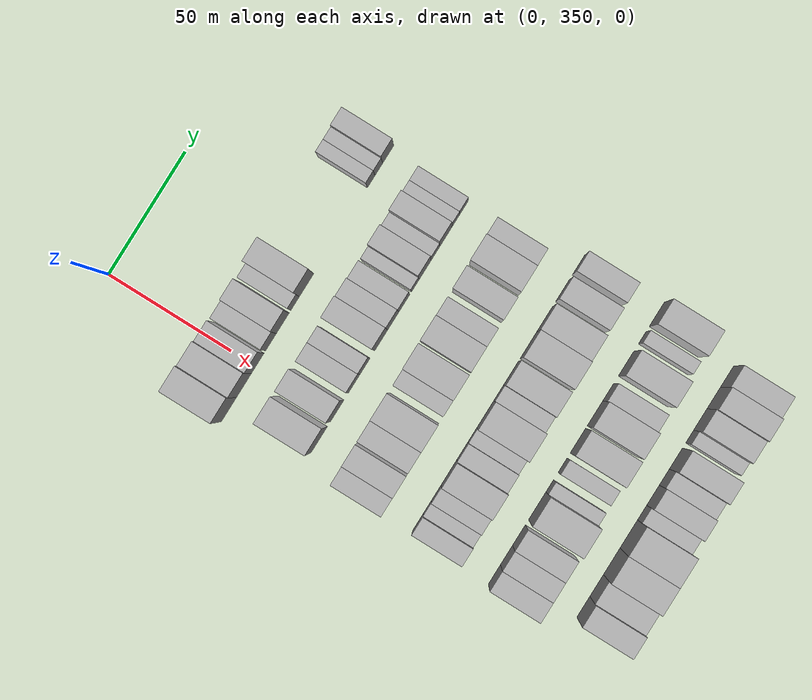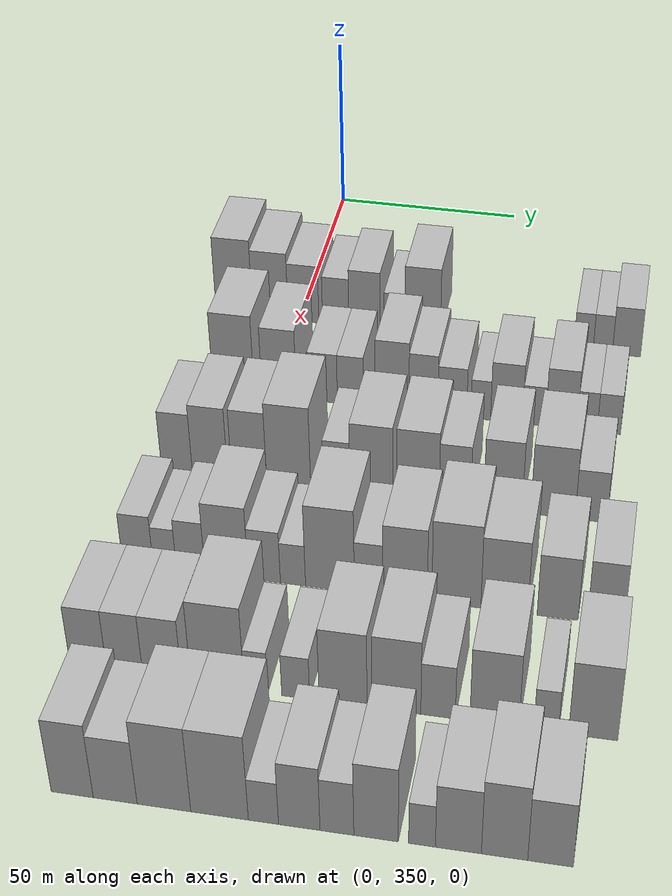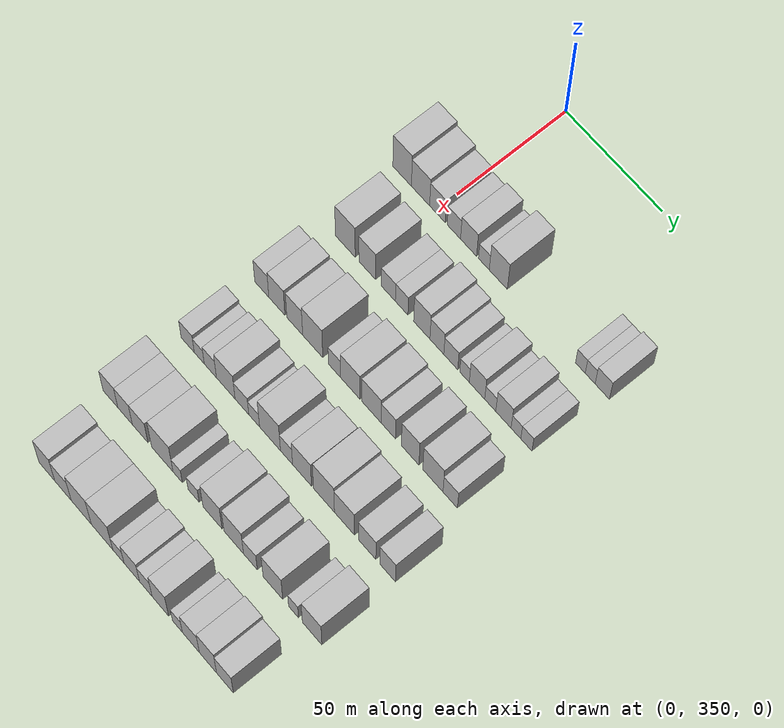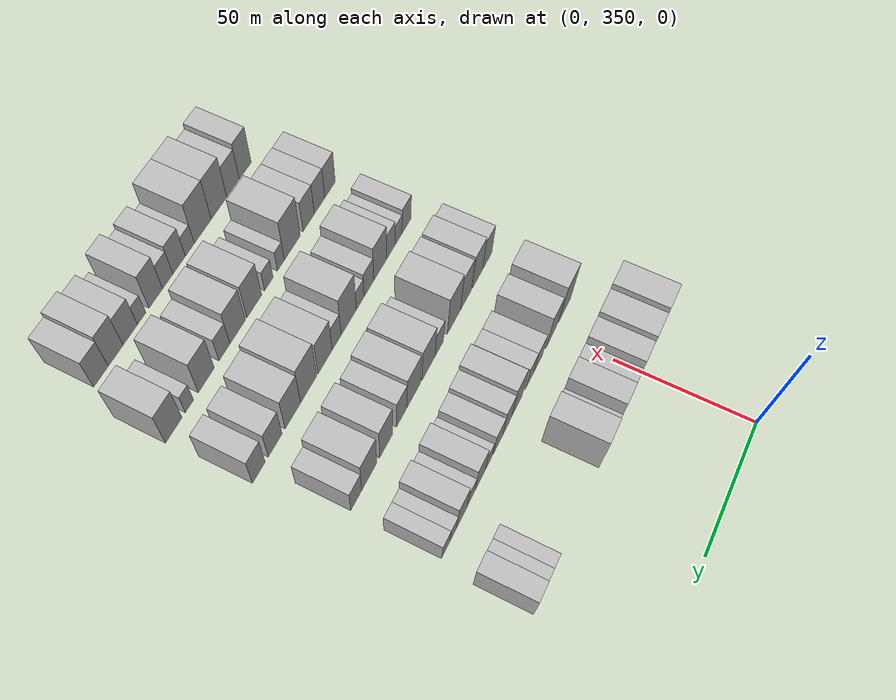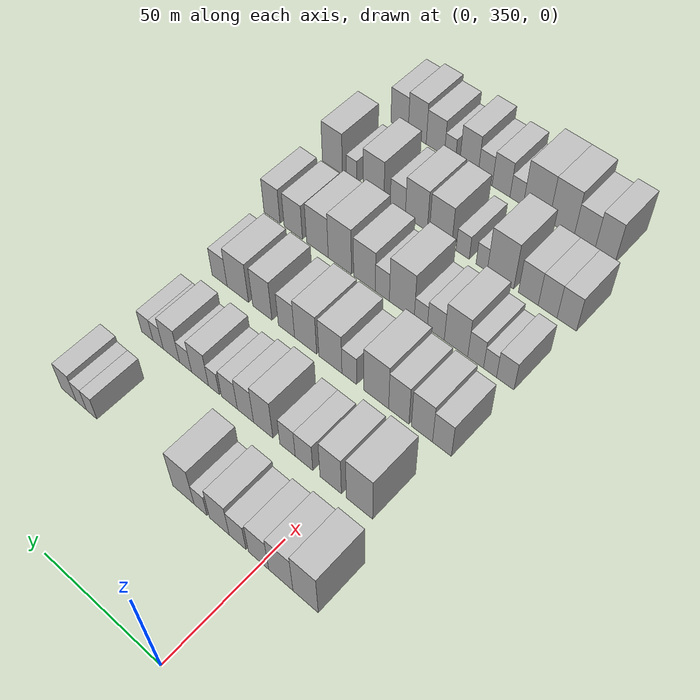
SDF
<sdf version="1.6">
 <world name="default">
  <model name="building_88">
   <static>1</static>
   <pose>50.0000 332.4073 0 0.000000 0.000000 0.000000</pose>
   <link name="link">
    <pose>0 0 12.00 0 0 0</pose>
    <collision name="collision"><geometry><box><size>20.0000 9.9280 24.0000</size></box></geometry></collision>
    <visual name="visual">
     <cast_shadows>0</cast_shadows>
     <geometry><box><size>20.0000 9.9280 24.0000</size></box></geometry>
     <material>
      <script>
       <uri>model://HANNAS_wall/materials/scripts</uri>
       <uri>model://HANNAS_wall/materials/textures</uri>
       <name>vrc/HANNAS_wall</name>
      </script>
     </material>
    </visual>
   </link>
  </model>
  <model name="building_89">
   <static>1</static>
   <pose>50.0000 342.2199 0 0.000000 0.000000 0.000000</pose>
   <link name="link">
    <pose>0 0 10.50 0 0 0</pose>
    <collision name="collision"><geometry><box><size>20.0000 9.6973 21.0000</size></box></geometry></collision>
    <visual name="visual">
     <cast_shadows>0</cast_shadows>
     <geometry><box><size>20.0000 9.6973 21.0000</size></box></geometry>
     <material>
      <script>
       <uri>model://HANNAS_wall/materials/scripts</uri>
       <uri>model://HANNAS_wall/materials/textures</uri>
       <name>vrc/HANNAS_wall</name>
      </script>
     </material>
    </visual>
   </link>
  </model>
  <model name="building_90">
   <static>1</static>
   <pose>50.0000 351.2147 0 0.000000 0.000000 0.000000</pose>
   <link name="link">
    <pose>0 0 9.00 0 0 0</pose>
    <collision name="collision"><geometry><box><size>20.0000 8.2923 18.0000</size></box></geometry></collision>
    <visual name="visual">
     <cast_shadows>0</cast_shadows>
     <geometry><box><size>20.0000 8.2923 18.0000</size></box></geometry>
     <material>
      <script>
       <uri>model://HANNAS_wall/materials/scripts</uri>
       <uri>model://HANNAS_wall/materials/textures</uri>
       <name>vrc/HANNAS_wall</name>
      </script>
     </material>
    </visual>
   </link>
  </model>
  <model name="building_91">
   <static>1</static>
   <pose>50.0000 359.8838 0 0.000000 0.000000 0.000000</pose>
   <link name="link">
    <pose>0 0 7.50 0 0 0</pose>
    <collision name="collision"><geometry><box><size>20.0000 7.0459 15.0000</size></box></geometry></collision>
    <visual name="visual">
     <cast_shadows>0</cast_shadows>
     <geometry><box><size>20.0000 7.0459 15.0000</size></box></geometry>
     <material>
      <script>
       <uri>model://HANNAS_wall/materials/scripts</uri>
       <uri>model://HANNAS_wall/materials/textures</uri>
       <name>vrc/HANNAS_wall</name>
      </script>
     </material>
    </visual>
   </link>
  </model>
  <model name="building_92">
   <static>1</static>
   <pose>50.0000 367.6012 0 0.000000 0.000000 0.000000</pose>
   <link name="link">
    <pose>0 0 9.00 0 0 0</pose>
    <collision name="collision"><geometry><box><size>20.0000 8.3888 18.0000</size></box></geometry></collision>
    <visual name="visual">
     <cast_shadows>0</cast_shadows>
     <geometry><box><size>20.0000 8.3888 18.0000</size></box></geometry>
     <material>
      <script>
       <uri>model://HANNAS_wall/materials/scripts</uri>
       <uri>model://HANNAS_wall/materials/textures</uri>
       <name>vrc/HANNAS_wall</name>
      </script>
     </material>
    </visual>
   </link>
  </model>
  <model name="building_93">
   <static>1</static>
   <pose>50.0000 375.6071 0 0.000000 0.000000 0.000000</pose>
   <link name="link">
    <pose>0 0 6.00 0 0 0</pose>
    <collision name="collision"><geometry><box><size>20.0000 5.6230 12.0000</size></box></geometry></collision>
    <visual name="visual">
     <cast_shadows>0</cast_shadows>
     <geometry><box><size>20.0000 5.6230 12.0000</size></box></geometry>
     <material>
      <script>
       <uri>model://HANNAS_wall/materials/scripts</uri>
       <uri>model://HANNAS_wall/materials/textures</uri>
       <name>vrc/HANNAS_wall</name>
      </script>
     </material>
    </visual>
   </link>
  </model>
  <model name="building_94">
   <static>1</static>
   <pose>50.0000 383.1094 0 0.000000 0.000000 0.000000</pose>
   <link name="link">
    <pose>0 0 10.50 0 0 0</pose>
    <collision name="collision"><geometry><box><size>20.0000 9.3817 21.0000</size></box></geometry></collision>
    <visual name="visual">
     <cast_shadows>0</cast_shadows>
     <geometry><box><size>20.0000 9.3817 21.0000</size></box></geometry>
     <material>
      <script>
       <uri>model://HANNAS_wall/materials/scripts</uri>
       <uri>model://HANNAS_wall/materials/textures</uri>
       <name>vrc/HANNAS_wall</name>
      </script>
     </material>
    </visual>
   </link>
  </model>
  <model name="building_95">
   <static>1</static>
   <pose>50.0000 425.2268 0 0.000000 0.000000 0.000000</pose>
   <link name="link">
    <pose>0 0 6.00 0 0 0</pose>
    <collision name="collision"><geometry><box><size>20.0000 4.9510 12.0000</size></box></geometry></collision>
    <visual name="visual">
     <cast_shadows>0</cast_shadows>
     <geometry><box><size>20.0000 4.9510 12.0000</size></box></geometry>
     <material>
      <script>
       <uri>model://HANNAS_wall/materials/scripts</uri>
       <uri>model://HANNAS_wall/materials/textures</uri>
       <name>vrc/HANNAS_wall</name>
      </script>
     </material>
    </visual>
   </link>
  </model>
  <model name="building_96">
   <static>1</static>
   <pose>50.0000 430.1942 0 0.000000 0.000000 0.000000</pose>
   <link name="link">
    <pose>0 0 6.00 0 0 0</pose>
    <collision name="collision"><geometry><box><size>20.0000 4.9839 12.0000</size></box></geometry></collision>
    <visual name="visual">
     <cast_shadows>0</cast_shadows>
     <geometry><box><size>20.0000 4.9839 12.0000</size></box></geometry>
     <material>
      <script>
       <uri>model://HANNAS_wall/materials/scripts</uri>
       <uri>model://HANNAS_wall/materials/textures</uri>
       <name>vrc/HANNAS_wall</name>
      </script>
     </material>
    </visual>
   </link>
  </model>
  <model name="building_97">
   <static>1</static>
   <pose>50.0000 436.2910 0 0.000000 0.000000 0.000000</pose>
   <link name="link">
    <pose>0 0 7.50 0 0 0</pose>
    <collision name="collision"><geometry><box><size>20.0000 7.2096 15.0000</size></box></geometry></collision>
    <visual name="visual">
     <cast_shadows>0</cast_shadows>
     <geometry><box><size>20.0000 7.2096 15.0000</size></box></geometry>
     <material>
      <script>
       <uri>model://HANNAS_wall/materials/scripts</uri>
       <uri>model://HANNAS_wall/materials/textures</uri>
       <name>vrc/HANNAS_wall</name>
      </script>
     </material>
    </visual>
   </link>
  </model>
  <model name="building_202">
   <static>1</static>
   <pose>82.0000 340.1632 0 0.000000 0.000000 0.000000</pose>
   <link name="link">
    <pose>0 0 12.00 0 0 0</pose>
    <collision name="collision"><geometry><box><size>20.0000 10.5875 24.0000</size></box></geometry></collision>
    <visual name="visual">
     <cast_shadows>0</cast_shadows>
     <geometry><box><size>20.0000 10.5875 24.0000</size></box></geometry>
     <material>
      <script>
       <uri>model://HANNAS_wall/materials/scripts</uri>
       <uri>model://HANNAS_wall/materials/textures</uri>
       <name>vrc/HANNAS_wall</name>
      </script>
     </material>
    </visual>
   </link>
  </model>
  <model name="building_203">
   <static>1</static>
   <pose>82.0000 351.8700 0 0.000000 0.000000 0.000000</pose>
   <link name="link">
    <pose>0 0 10.50 0 0 0</pose>
    <collision name="collision"><geometry><box><size>20.0000 8.8261 21.0000</size></box></geometry></collision>
    <visual name="visual">
     <cast_shadows>0</cast_shadows>
     <geometry><box><size>20.0000 8.8261 21.0000</size></box></geometry>
     <material>
      <script>
       <uri>model://HANNAS_wall/materials/scripts</uri>
       <uri>model://HANNAS_wall/materials/textures</uri>
       <name>vrc/HANNAS_wall</name>
      </script>
     </material>
    </visual>
   </link>
  </model>
  <model name="building_204">
   <static>1</static>
   <pose>82.0000 363.0086 0 0.000000 0.000000 0.000000</pose>
   <link name="link">
    <pose>0 0 7.50 0 0 0</pose>
    <collision name="collision"><geometry><box><size>20.0000 7.4512 15.0000</size></box></geometry></collision>
    <visual name="visual">
     <cast_shadows>0</cast_shadows>
     <geometry><box><size>20.0000 7.4512 15.0000</size></box></geometry>
     <material>
      <script>
       <uri>model://HANNAS_wall/materials/scripts</uri>
       <uri>model://HANNAS_wall/materials/textures</uri>
       <name>vrc/HANNAS_wall</name>
      </script>
     </material>
    </visual>
   </link>
  </model>
  <model name="building_205">
   <static>1</static>
   <pose>82.0000 370.0252 0 0.000000 0.000000 0.000000</pose>
   <link name="link">
    <pose>0 0 7.50 0 0 0</pose>
    <collision name="collision"><geometry><box><size>20.0000 6.5820 15.0000</size></box></geometry></collision>
    <visual name="visual">
     <cast_shadows>0</cast_shadows>
     <geometry><box><size>20.0000 6.5820 15.0000</size></box></geometry>
     <material>
      <script>
       <uri>model://HANNAS_wall/materials/scripts</uri>
       <uri>model://HANNAS_wall/materials/textures</uri>
       <name>vrc/HANNAS_wall</name>
      </script>
     </material>
    </visual>
   </link>
  </model>
  <model name="building_206">
   <static>1</static>
   <pose>82.0000 380.5634 0 0.000000 0.000000 0.000000</pose>
   <link name="link">
    <pose>0 0 10.50 0 0 0</pose>
    <collision name="collision"><geometry><box><size>20.0000 8.4944 21.0000</size></box></geometry></collision>
    <visual name="visual">
     <cast_shadows>0</cast_shadows>
     <geometry><box><size>20.0000 8.4944 21.0000</size></box></geometry>
     <material>
      <script>
       <uri>model://HANNAS_wall/materials/scripts</uri>
       <uri>model://HANNAS_wall/materials/textures</uri>
       <name>vrc/HANNAS_wall</name>
      </script>
     </material>
    </visual>
   </link>
  </model>
  <model name="building_207">
   <static>1</static>
   <pose>82.0000 388.4216 0 0.000000 0.000000 0.000000</pose>
   <link name="link">
    <pose>0 0 9.00 0 0 0</pose>
    <collision name="collision"><geometry><box><size>20.0000 7.2219 18.0000</size></box></geometry></collision>
    <visual name="visual">
     <cast_shadows>0</cast_shadows>
     <geometry><box><size>20.0000 7.2219 18.0000</size></box></geometry>
     <material>
      <script>
       <uri>model://HANNAS_wall/materials/scripts</uri>
       <uri>model://HANNAS_wall/materials/textures</uri>
       <name>vrc/HANNAS_wall</name>
      </script>
     </material>
    </visual>
   </link>
  </model>
  <model name="building_208">
   <static>1</static>
   <pose>82.0000 395.6303 0 0.000000 0.000000 0.000000</pose>
   <link name="link">
    <pose>0 0 7.50 0 0 0</pose>
    <collision name="collision"><geometry><box><size>20.0000 7.1954 15.0000</size></box></geometry></collision>
    <visual name="visual">
     <cast_shadows>0</cast_shadows>
     <geometry><box><size>20.0000 7.1954 15.0000</size></box></geometry>
     <material>
      <script>
       <uri>model://HANNAS_wall/materials/scripts</uri>
       <uri>model://HANNAS_wall/materials/textures</uri>
       <name>vrc/HANNAS_wall</name>
      </script>
     </material>
    </visual>
   </link>
  </model>
  <model name="building_209">
   <static>1</static>
   <pose>82.0000 402.6941 0 0.000000 0.000000 0.000000</pose>
   <link name="link">
    <pose>0 0 6.00 0 0 0</pose>
    <collision name="collision"><geometry><box><size>20.0000 4.9323 12.0000</size></box></geometry></collision>
    <visual name="visual">
     <cast_shadows>0</cast_shadows>
     <geometry><box><size>20.0000 4.9323 12.0000</size></box></geometry>
     <material>
      <script>
       <uri>model://HANNAS_wall/materials/scripts</uri>
       <uri>model://HANNAS_wall/materials/textures</uri>
       <name>vrc/HANNAS_wall</name>
      </script>
     </material>
    </visual>
   </link>
  </model>
  <model name="building_210">
   <static>1</static>
   <pose>82.0000 409.1132 0 0.000000 0.000000 0.000000</pose>
   <link name="link">
    <pose>0 0 9.00 0 0 0</pose>
    <collision name="collision"><geometry><box><size>20.0000 7.9059 18.0000</size></box></geometry></collision>
    <visual name="visual">
     <cast_shadows>0</cast_shadows>
     <geometry><box><size>20.0000 7.9059 18.0000</size></box></geometry>
     <material>
      <script>
       <uri>model://HANNAS_wall/materials/scripts</uri>
       <uri>model://HANNAS_wall/materials/textures</uri>
       <name>vrc/HANNAS_wall</name>
      </script>
     </material>
    </visual>
   </link>
  </model>
  <model name="building_211">
   <static>1</static>
   <pose>82.0000 415.9010 0 0.000000 0.000000 0.000000</pose>
   <link name="link">
    <pose>0 0 6.00 0 0 0</pose>
    <collision name="collision"><geometry><box><size>20.0000 5.6697 12.0000</size></box></geometry></collision>
    <visual name="visual">
     <cast_shadows>0</cast_shadows>
     <geometry><box><size>20.0000 5.6697 12.0000</size></box></geometry>
     <material>
      <script>
       <uri>model://HANNAS_wall/materials/scripts</uri>
       <uri>model://HANNAS_wall/materials/textures</uri>
       <name>vrc/HANNAS_wall</name>
      </script>
     </material>
    </visual>
   </link>
  </model>
  <model name="building_212">
   <static>1</static>
   <pose>82.0000 422.6254 0 0.000000 0.000000 0.000000</pose>
   <link name="link">
    <pose>0 0 9.00 0 0 0</pose>
    <collision name="collision"><geometry><box><size>20.0000 7.7792 18.0000</size></box></geometry></collision>
    <visual name="visual">
     <cast_shadows>0</cast_shadows>
     <geometry><box><size>20.0000 7.7792 18.0000</size></box></geometry>
     <material>
      <script>
       <uri>model://HANNAS_wall/materials/scripts</uri>
       <uri>model://HANNAS_wall/materials/textures</uri>
       <name>vrc/HANNAS_wall</name>
      </script>
     </material>
    </visual>
   </link>
  </model>
  <model name="building_213">
   <static>1</static>
   <pose>82.0000 428.9728 0 0.000000 0.000000 0.000000</pose>
   <link name="link">
    <pose>0 0 6.00 0 0 0</pose>
    <collision name="collision"><geometry><box><size>20.0000 4.9157 12.0000</size></box></geometry></collision>
    <visual name="visual">
     <cast_shadows>0</cast_shadows>
     <geometry><box><size>20.0000 4.9157 12.0000</size></box></geometry>
     <material>
      <script>
       <uri>model://HANNAS_wall/materials/scripts</uri>
       <uri>model://HANNAS_wall/materials/textures</uri>
       <name>vrc/HANNAS_wall</name>
      </script>
     </material>
    </visual>
   </link>
  </model>
  <model name="building_214">
   <static>1</static>
   <pose>82.0000 434.2665 0 0.000000 0.000000 0.000000</pose>
   <link name="link">
    <pose>0 0 6.00 0 0 0</pose>
    <collision name="collision"><geometry><box><size>20.0000 5.6716 12.0000</size></box></geometry></collision>
    <visual name="visual">
     <cast_shadows>0</cast_shadows>
     <geometry><box><size>20.0000 5.6716 12.0000</size></box></geometry>
     <material>
      <script>
       <uri>model://HANNAS_wall/materials/scripts</uri>
       <uri>model://HANNAS_wall/materials/textures</uri>
       <name>vrc/HANNAS_wall</name>
      </script>
     </material>
    </visual>
   </link>
  </model>
  <model name="building_327">
   <static>1</static>
   <pose>114.0000 334.2565 0 0.000000 0.000000 0.000000</pose>
   <link name="link">
    <pose>0 0 9.00 0 0 0</pose>
    <collision name="collision"><geometry><box><size>20.0000 7.5615 18.0000</size></box></geometry></collision>
    <visual name="visual">
     <cast_shadows>0</cast_shadows>
     <geometry><box><size>20.0000 7.5615 18.0000</size></box></geometry>
     <material>
      <script>
       <uri>model://HANNAS_wall/materials/scripts</uri>
       <uri>model://HANNAS_wall/materials/textures</uri>
       <name>vrc/HANNAS_wall</name>
      </script>
     </material>
    </visual>
   </link>
  </model>
  <model name="building_328">
   <static>1</static>
   <pose>114.0000 342.3560 0 0.000000 0.000000 0.000000</pose>
   <link name="link">
    <pose>0 0 10.50 0 0 0</pose>
    <collision name="collision"><geometry><box><size>20.0000 8.6376 21.0000</size></box></geometry></collision>
    <visual name="visual">
     <cast_shadows>0</cast_shadows>
     <geometry><box><size>20.0000 8.6376 21.0000</size></box></geometry>
     <material>
      <script>
       <uri>model://HANNAS_wall/materials/scripts</uri>
       <uri>model://HANNAS_wall/materials/textures</uri>
       <name>vrc/HANNAS_wall</name>
      </script>
     </material>
    </visual>
   </link>
  </model>
  <model name="building_329">
   <static>1</static>
   <pose>114.0000 351.8995 0 0.000000 0.000000 0.000000</pose>
   <link name="link">
    <pose>0 0 10.50 0 0 0</pose>
    <collision name="collision"><geometry><box><size>20.0000 8.4495 21.0000</size></box></geometry></collision>
    <visual name="visual">
     <cast_shadows>0</cast_shadows>
     <geometry><box><size>20.0000 8.4495 21.0000</size></box></geometry>
     <material>
      <script>
       <uri>model://HANNAS_wall/materials/scripts</uri>
       <uri>model://HANNAS_wall/materials/textures</uri>
       <name>vrc/HANNAS_wall</name>
      </script>
     </material>
    </visual>
   </link>
  </model>
  <model name="building_330">
   <static>1</static>
   <pose>114.0000 361.4317 0 0.000000 0.000000 0.000000</pose>
   <link name="link">
    <pose>0 0 12.00 0 0 0</pose>
    <collision name="collision"><geometry><box><size>20.0000 10.6148 24.0000</size></box></geometry></collision>
    <visual name="visual">
     <cast_shadows>0</cast_shadows>
     <geometry><box><size>20.0000 10.6148 24.0000</size></box></geometry>
     <material>
      <script>
       <uri>model://HANNAS_wall/materials/scripts</uri>
       <uri>model://HANNAS_wall/materials/textures</uri>
       <name>vrc/HANNAS_wall</name>
      </script>
     </material>
    </visual>
   </link>
  </model>
  <model name="building_331">
   <static>1</static>
   <pose>114.0000 372.9339 0 0.000000 0.000000 0.000000</pose>
   <link name="link">
    <pose>0 0 7.50 0 0 0</pose>
    <collision name="collision"><geometry><box><size>20.0000 6.3896 15.0000</size></box></geometry></collision>
    <visual name="visual">
     <cast_shadows>0</cast_shadows>
     <geometry><box><size>20.0000 6.3896 15.0000</size></box></geometry>
     <material>
      <script>
       <uri>model://HANNAS_wall/materials/scripts</uri>
       <uri>model://HANNAS_wall/materials/textures</uri>
       <name>vrc/HANNAS_wall</name>
      </script>
     </material>
    </visual>
   </link>
  </model>
  <model name="building_332">
   <static>1</static>
   <pose>114.0000 381.2101 0 0.000000 0.000000 0.000000</pose>
   <link name="link">
    <pose>0 0 10.50 0 0 0</pose>
    <collision name="collision"><geometry><box><size>20.0000 10.1627 21.0000</size></box></geometry></collision>
    <visual name="visual">
     <cast_shadows>0</cast_shadows>
     <geometry><box><size>20.0000 10.1627 21.0000</size></box></geometry>
     <material>
      <script>
       <uri>model://HANNAS_wall/materials/scripts</uri>
       <uri>model://HANNAS_wall/materials/textures</uri>
       <name>vrc/HANNAS_wall</name>
      </script>
     </material>
    </visual>
   </link>
  </model>
  <model name="building_333">
   <static>1</static>
   <pose>114.0000 392.2858 0 0.000000 0.000000 0.000000</pose>
   <link name="link">
    <pose>0 0 10.50 0 0 0</pose>
    <collision name="collision"><geometry><box><size>20.0000 9.9888 21.0000</size></box></geometry></collision>
    <visual name="visual">
     <cast_shadows>0</cast_shadows>
     <geometry><box><size>20.0000 9.9888 21.0000</size></box></geometry>
     <material>
      <script>
       <uri>model://HANNAS_wall/materials/scripts</uri>
       <uri>model://HANNAS_wall/materials/textures</uri>
       <name>vrc/HANNAS_wall</name>
      </script>
     </material>
    </visual>
   </link>
  </model>
  <model name="building_334">
   <static>1</static>
   <pose>114.0000 400.9916 0 0.000000 0.000000 0.000000</pose>
   <link name="link">
    <pose>0 0 9.00 0 0 0</pose>
    <collision name="collision"><geometry><box><size>20.0000 7.4227 18.0000</size></box></geometry></collision>
    <visual name="visual">
     <cast_shadows>0</cast_shadows>
     <geometry><box><size>20.0000 7.4227 18.0000</size></box></geometry>
     <material>
      <script>
       <uri>model://HANNAS_wall/materials/scripts</uri>
       <uri>model://HANNAS_wall/materials/textures</uri>
       <name>vrc/HANNAS_wall</name>
      </script>
     </material>
    </visual>
   </link>
  </model>
  <model name="building_335">
   <static>1</static>
   <pose>114.0000 412.2151 0 0.000000 0.000000 0.000000</pose>
   <link name="link">
    <pose>0 0 10.50 0 0 0</pose>
    <collision name="collision"><geometry><box><size>20.0000 9.0244 21.0000</size></box></geometry></collision>
    <visual name="visual">
     <cast_shadows>0</cast_shadows>
     <geometry><box><size>20.0000 9.0244 21.0000</size></box></geometry>
     <material>
      <script>
       <uri>model://HANNAS_wall/materials/scripts</uri>
       <uri>model://HANNAS_wall/materials/textures</uri>
       <name>vrc/HANNAS_wall</name>
      </script>
     </material>
    </visual>
   </link>
  </model>
  <model name="building_336">
   <static>1</static>
   <pose>114.0000 423.8773 0 0.000000 0.000000 0.000000</pose>
   <link name="link">
    <pose>0 0 10.50 0 0 0</pose>
    <collision name="collision"><geometry><box><size>20.0000 10.2999 21.0000</size></box></geometry></collision>
    <visual name="visual">
     <cast_shadows>0</cast_shadows>
     <geometry><box><size>20.0000 10.2999 21.0000</size></box></geometry>
     <material>
      <script>
       <uri>model://HANNAS_wall/materials/scripts</uri>
       <uri>model://HANNAS_wall/materials/textures</uri>
       <name>vrc/HANNAS_wall</name>
      </script>
     </material>
    </visual>
   </link>
  </model>
  <model name="building_337">
   <static>1</static>
   <pose>114.0000 432.6877 0 0.000000 0.000000 0.000000</pose>
   <link name="link">
    <pose>0 0 7.50 0 0 0</pose>
    <collision name="collision"><geometry><box><size>20.0000 7.3209 15.0000</size></box></geometry></collision>
    <visual name="visual">
     <cast_shadows>0</cast_shadows>
     <geometry><box><size>20.0000 7.3209 15.0000</size></box></geometry>
     <material>
      <script>
       <uri>model://HANNAS_wall/materials/scripts</uri>
       <uri>model://HANNAS_wall/materials/textures</uri>
       <name>vrc/HANNAS_wall</name>
      </script>
     </material>
    </visual>
   </link>
  </model>
  <model name="building_443">
   <static>1</static>
   <pose>146.0000 334.0031 0 0.000000 0.000000 0.000000</pose>
   <link name="link">
    <pose>0 0 7.50 0 0 0</pose>
    <collision name="collision"><geometry><box><size>20.0000 7.1142 15.0000</size></box></geometry></collision>
    <visual name="visual">
     <cast_shadows>0</cast_shadows>
     <geometry><box><size>20.0000 7.1142 15.0000</size></box></geometry>
     <material>
      <script>
       <uri>model://HANNAS_wall/materials/scripts</uri>
       <uri>model://HANNAS_wall/materials/textures</uri>
       <name>vrc/HANNAS_wall</name>
      </script>
     </material>
    </visual>
   </link>
  </model>
  <model name="building_444">
   <static>1</static>
   <pose>146.0000 340.2319 0 0.000000 0.000000 0.000000</pose>
   <link name="link">
    <pose>0 0 6.00 0 0 0</pose>
    <collision name="collision"><geometry><box><size>20.0000 5.3434 12.0000</size></box></geometry></collision>
    <visual name="visual">
     <cast_shadows>0</cast_shadows>
     <geometry><box><size>20.0000 5.3434 12.0000</size></box></geometry>
     <material>
      <script>
       <uri>model://HANNAS_wall/materials/scripts</uri>
       <uri>model://HANNAS_wall/materials/textures</uri>
       <name>vrc/HANNAS_wall</name>
      </script>
     </material>
    </visual>
   </link>
  </model>
  <model name="building_445">
   <static>1</static>
   <pose>146.0000 346.1858 0 0.000000 0.000000 0.000000</pose>
   <link name="link">
    <pose>0 0 7.50 0 0 0</pose>
    <collision name="collision"><geometry><box><size>20.0000 6.5643 15.0000</size></box></geometry></collision>
    <visual name="visual">
     <cast_shadows>0</cast_shadows>
     <geometry><box><size>20.0000 6.5643 15.0000</size></box></geometry>
     <material>
      <script>
       <uri>model://HANNAS_wall/materials/scripts</uri>
       <uri>model://HANNAS_wall/materials/textures</uri>
       <name>vrc/HANNAS_wall</name>
      </script>
     </material>
    </visual>
   </link>
  </model>
  <model name="building_446">
   <static>1</static>
   <pose>146.0000 354.4262 0 0.000000 0.000000 0.000000</pose>
   <link name="link">
    <pose>0 0 10.50 0 0 0</pose>
    <collision name="collision"><geometry><box><size>20.0000 9.9166 21.0000</size></box></geometry></collision>
    <visual name="visual">
     <cast_shadows>0</cast_shadows>
     <geometry><box><size>20.0000 9.9166 21.0000</size></box></geometry>
     <material>
      <script>
       <uri>model://HANNAS_wall/materials/scripts</uri>
       <uri>model://HANNAS_wall/materials/textures</uri>
       <name>vrc/HANNAS_wall</name>
      </script>
     </material>
    </visual>
   </link>
  </model>
  <model name="building_447">
   <static>1</static>
   <pose>146.0000 363.0286 0 0.000000 0.000000 0.000000</pose>
   <link name="link">
    <pose>0 0 7.50 0 0 0</pose>
    <collision name="collision"><geometry><box><size>20.0000 7.2883 15.0000</size></box></geometry></collision>
    <visual name="visual">
     <cast_shadows>0</cast_shadows>
     <geometry><box><size>20.0000 7.2883 15.0000</size></box></geometry>
     <material>
      <script>
       <uri>model://HANNAS_wall/materials/scripts</uri>
       <uri>model://HANNAS_wall/materials/textures</uri>
       <name>vrc/HANNAS_wall</name>
      </script>
     </material>
    </visual>
   </link>
  </model>
  <model name="building_448">
   <static>1</static>
   <pose>146.0000 369.5188 0 0.000000 0.000000 0.000000</pose>
   <link name="link">
    <pose>0 0 6.00 0 0 0</pose>
    <collision name="collision"><geometry><box><size>20.0000 5.6920 12.0000</size></box></geometry></collision>
    <visual name="visual">
     <cast_shadows>0</cast_shadows>
     <geometry><box><size>20.0000 5.6920 12.0000</size></box></geometry>
     <material>
      <script>
       <uri>model://HANNAS_wall/materials/scripts</uri>
       <uri>model://HANNAS_wall/materials/textures</uri>
       <name>vrc/HANNAS_wall</name>
      </script>
     </material>
    </visual>
   </link>
  </model>
  <model name="building_449">
   <static>1</static>
   <pose>146.0000 377.8649 0 0.000000 0.000000 0.000000</pose>
   <link name="link">
    <pose>0 0 12.00 0 0 0</pose>
    <collision name="collision"><geometry><box><size>20.0000 11.0002 24.0000</size></box></geometry></collision>
    <visual name="visual">
     <cast_shadows>0</cast_shadows>
     <geometry><box><size>20.0000 11.0002 24.0000</size></box></geometry>
     <material>
      <script>
       <uri>model://HANNAS_wall/materials/scripts</uri>
       <uri>model://HANNAS_wall/materials/textures</uri>
       <name>vrc/HANNAS_wall</name>
      </script>
     </material>
    </visual>
   </link>
  </model>
  <model name="building_450">
   <static>1</static>
   <pose>146.0000 386.5357 0 0.000000 0.000000 0.000000</pose>
   <link name="link">
    <pose>0 0 7.50 0 0 0</pose>
    <collision name="collision"><geometry><box><size>20.0000 6.3415 15.0000</size></box></geometry></collision>
    <visual name="visual">
     <cast_shadows>0</cast_shadows>
     <geometry><box><size>20.0000 6.3415 15.0000</size></box></geometry>
     <material>
      <script>
       <uri>model://HANNAS_wall/materials/scripts</uri>
       <uri>model://HANNAS_wall/materials/textures</uri>
       <name>vrc/HANNAS_wall</name>
      </script>
     </material>
    </visual>
   </link>
  </model>
  <model name="building_451">
   <static>1</static>
   <pose>146.0000 394.6485 0 0.000000 0.000000 0.000000</pose>
   <link name="link">
    <pose>0 0 10.50 0 0 0</pose>
    <collision name="collision"><geometry><box><size>20.0000 9.8841 21.0000</size></box></geometry></collision>
    <visual name="visual">
     <cast_shadows>0</cast_shadows>
     <geometry><box><size>20.0000 9.8841 21.0000</size></box></geometry>
     <material>
      <script>
       <uri>model://HANNAS_wall/materials/scripts</uri>
       <uri>model://HANNAS_wall/materials/textures</uri>
       <name>vrc/HANNAS_wall</name>
      </script>
     </material>
    </visual>
   </link>
  </model>
  <model name="building_452">
   <static>1</static>
   <pose>146.0000 406.0019 0 0.000000 0.000000 0.000000</pose>
   <link name="link">
    <pose>0 0 12.00 0 0 0</pose>
    <collision name="collision"><geometry><box><size>20.0000 10.8226 24.0000</size></box></geometry></collision>
    <visual name="visual">
     <cast_shadows>0</cast_shadows>
     <geometry><box><size>20.0000 10.8226 24.0000</size></box></geometry>
     <material>
      <script>
       <uri>model://HANNAS_wall/materials/scripts</uri>
       <uri>model://HANNAS_wall/materials/textures</uri>
       <name>vrc/HANNAS_wall</name>
      </script>
     </material>
    </visual>
   </link>
  </model>
  <model name="building_453">
   <static>1</static>
   <pose>146.0000 416.5757 0 0.000000 0.000000 0.000000</pose>
   <link name="link">
    <pose>0 0 10.50 0 0 0</pose>
    <collision name="collision"><geometry><box><size>20.0000 10.3250 21.0000</size></box></geometry></collision>
    <visual name="visual">
     <cast_shadows>0</cast_shadows>
     <geometry><box><size>20.0000 10.3250 21.0000</size></box></geometry>
     <material>
      <script>
       <uri>model://HANNAS_wall/materials/scripts</uri>
       <uri>model://HANNAS_wall/materials/textures</uri>
       <name>vrc/HANNAS_wall</name>
      </script>
     </material>
    </visual>
   </link>
  </model>
  <model name="building_454">
   <static>1</static>
   <pose>146.0000 428.1921 0 0.000000 0.000000 0.000000</pose>
   <link name="link">
    <pose>0 0 9.00 0 0 0</pose>
    <collision name="collision"><geometry><box><size>20.0000 8.9080 18.0000</size></box></geometry></collision>
    <visual name="visual">
     <cast_shadows>0</cast_shadows>
     <geometry><box><size>20.0000 8.9080 18.0000</size></box></geometry>
     <material>
      <script>
       <uri>model://HANNAS_wall/materials/scripts</uri>
       <uri>model://HANNAS_wall/materials/textures</uri>
       <name>vrc/HANNAS_wall</name>
      </script>
     </material>
    </visual>
   </link>
  </model>
  <model name="building_455">
   <static>1</static>
   <pose>146.0000 438.6288 0 0.000000 0.000000 0.000000</pose>
   <link name="link">
    <pose>0 0 9.00 0 0 0</pose>
    <collision name="collision"><geometry><box><size>20.0000 7.9654 18.0000</size></box></geometry></collision>
    <visual name="visual">
     <cast_shadows>0</cast_shadows>
     <geometry><box><size>20.0000 7.9654 18.0000</size></box></geometry>
     <material>
      <script>
       <uri>model://HANNAS_wall/materials/scripts</uri>
       <uri>model://HANNAS_wall/materials/textures</uri>
       <name>vrc/HANNAS_wall</name>
      </script>
     </material>
    </visual>
   </link>
  </model>
  <model name="building_565">
   <static>1</static>
   <pose>178.0000 332.6397 0 0.000000 0.000000 0.000000</pose>
   <link name="link">
    <pose>0 0 9.00 0 0 0</pose>
    <collision name="collision"><geometry><box><size>20.0000 7.9749 18.0000</size></box></geometry></collision>
    <visual name="visual">
     <cast_shadows>0</cast_shadows>
     <geometry><box><size>20.0000 7.9749 18.0000</size></box></geometry>
     <material>
      <script>
       <uri>model://HANNAS_wall/materials/scripts</uri>
       <uri>model://HANNAS_wall/materials/textures</uri>
       <name>vrc/HANNAS_wall</name>
      </script>
     </material>
    </visual>
   </link>
  </model>
  <model name="building_566">
   <static>1</static>
   <pose>178.0000 340.5571 0 0.000000 0.000000 0.000000</pose>
   <link name="link">
    <pose>0 0 9.00 0 0 0</pose>
    <collision name="collision"><geometry><box><size>20.0000 7.8600 18.0000</size></box></geometry></collision>
    <visual name="visual">
     <cast_shadows>0</cast_shadows>
     <geometry><box><size>20.0000 7.8600 18.0000</size></box></geometry>
     <material>
      <script>
       <uri>model://HANNAS_wall/materials/scripts</uri>
       <uri>model://HANNAS_wall/materials/textures</uri>
       <name>vrc/HANNAS_wall</name>
      </script>
     </material>
    </visual>
   </link>
  </model>
  <model name="building_567">
   <static>1</static>
   <pose>178.0000 348.6708 0 0.000000 0.000000 0.000000</pose>
   <link name="link">
    <pose>0 0 9.00 0 0 0</pose>
    <collision name="collision"><geometry><box><size>20.0000 8.3673 18.0000</size></box></geometry></collision>
    <visual name="visual">
     <cast_shadows>0</cast_shadows>
     <geometry><box><size>20.0000 8.3673 18.0000</size></box></geometry>
     <material>
      <script>
       <uri>model://HANNAS_wall/materials/scripts</uri>
       <uri>model://HANNAS_wall/materials/textures</uri>
       <name>vrc/HANNAS_wall</name>
      </script>
     </material>
    </visual>
   </link>
  </model>
  <model name="building_568">
   <static>1</static>
   <pose>178.0000 360.5635 0 0.000000 0.000000 0.000000</pose>
   <link name="link">
    <pose>0 0 12.00 0 0 0</pose>
    <collision name="collision"><geometry><box><size>20.0000 11.4181 24.0000</size></box></geometry></collision>
    <visual name="visual">
     <cast_shadows>0</cast_shadows>
     <geometry><box><size>20.0000 11.4181 24.0000</size></box></geometry>
     <material>
      <script>
       <uri>model://HANNAS_wall/materials/scripts</uri>
       <uri>model://HANNAS_wall/materials/textures</uri>
       <name>vrc/HANNAS_wall</name>
      </script>
     </material>
    </visual>
   </link>
  </model>
  <model name="building_569">
   <static>1</static>
   <pose>178.0000 368.7420 0 0.000000 0.000000 0.000000</pose>
   <link name="link">
    <pose>0 0 6.00 0 0 0</pose>
    <collision name="collision"><geometry><box><size>20.0000 4.9390 12.0000</size></box></geometry></collision>
    <visual name="visual">
     <cast_shadows>0</cast_shadows>
     <geometry><box><size>20.0000 4.9390 12.0000</size></box></geometry>
     <material>
      <script>
       <uri>model://HANNAS_wall/materials/scripts</uri>
       <uri>model://HANNAS_wall/materials/textures</uri>
       <name>vrc/HANNAS_wall</name>
      </script>
     </material>
    </visual>
   </link>
  </model>
  <model name="building_570">
   <static>1</static>
   <pose>178.0000 377.1625 0 0.000000 0.000000 0.000000</pose>
   <link name="link">
    <pose>0 0 6.00 0 0 0</pose>
    <collision name="collision"><geometry><box><size>20.0000 5.9020 12.0000</size></box></geometry></collision>
    <visual name="visual">
     <cast_shadows>0</cast_shadows>
     <geometry><box><size>20.0000 5.9020 12.0000</size></box></geometry>
     <material>
      <script>
       <uri>model://HANNAS_wall/materials/scripts</uri>
       <uri>model://HANNAS_wall/materials/textures</uri>
       <name>vrc/HANNAS_wall</name>
      </script>
     </material>
    </visual>
   </link>
  </model>
  <model name="building_571">
   <static>1</static>
   <pose>178.0000 387.1439 0 0.000000 0.000000 0.000000</pose>
   <link name="link">
    <pose>0 0 10.50 0 0 0</pose>
    <collision name="collision"><geometry><box><size>20.0000 10.0608 21.0000</size></box></geometry></collision>
    <visual name="visual">
     <cast_shadows>0</cast_shadows>
     <geometry><box><size>20.0000 10.0608 21.0000</size></box></geometry>
     <material>
      <script>
       <uri>model://HANNAS_wall/materials/scripts</uri>
       <uri>model://HANNAS_wall/materials/textures</uri>
       <name>vrc/HANNAS_wall</name>
      </script>
     </material>
    </visual>
   </link>
  </model>
  <model name="building_572">
   <static>1</static>
   <pose>178.0000 398.2639 0 0.000000 0.000000 0.000000</pose>
   <link name="link">
    <pose>0 0 10.50 0 0 0</pose>
    <collision name="collision"><geometry><box><size>20.0000 10.1792 21.0000</size></box></geometry></collision>
    <visual name="visual">
     <cast_shadows>0</cast_shadows>
     <geometry><box><size>20.0000 10.1792 21.0000</size></box></geometry>
     <material>
      <script>
       <uri>model://HANNAS_wall/materials/scripts</uri>
       <uri>model://HANNAS_wall/materials/textures</uri>
       <name>vrc/HANNAS_wall</name>
      </script>
     </material>
    </visual>
   </link>
  </model>
  <model name="building_573">
   <static>1</static>
   <pose>178.0000 406.9208 0 0.000000 0.000000 0.000000</pose>
   <link name="link">
    <pose>0 0 7.50 0 0 0</pose>
    <collision name="collision"><geometry><box><size>20.0000 7.1346 15.0000</size></box></geometry></collision>
    <visual name="visual">
     <cast_shadows>0</cast_shadows>
     <geometry><box><size>20.0000 7.1346 15.0000</size></box></geometry>
     <material>
      <script>
       <uri>model://HANNAS_wall/materials/scripts</uri>
       <uri>model://HANNAS_wall/materials/textures</uri>
       <name>vrc/HANNAS_wall</name>
      </script>
     </material>
    </visual>
   </link>
  </model>
  <model name="building_574">
   <static>1</static>
   <pose>178.0000 418.5422 0 0.000000 0.000000 0.000000</pose>
   <link name="link">
    <pose>0 0 10.50 0 0 0</pose>
    <collision name="collision"><geometry><box><size>20.0000 10.1082 21.0000</size></box></geometry></collision>
    <visual name="visual">
     <cast_shadows>0</cast_shadows>
     <geometry><box><size>20.0000 10.1082 21.0000</size></box></geometry>
     <material>
      <script>
       <uri>model://HANNAS_wall/materials/scripts</uri>
       <uri>model://HANNAS_wall/materials/textures</uri>
       <name>vrc/HANNAS_wall</name>
      </script>
     </material>
    </visual>
   </link>
  </model>
  <model name="building_575">
   <static>1</static>
   <pose>178.0000 429.1206 0 0.000000 0.000000 0.000000</pose>
   <link name="link">
    <pose>0 0 6.00 0 0 0</pose>
    <collision name="collision"><geometry><box><size>20.0000 5.0487 12.0000</size></box></geometry></collision>
    <visual name="visual">
     <cast_shadows>0</cast_shadows>
     <geometry><box><size>20.0000 5.0487 12.0000</size></box></geometry>
     <material>
      <script>
       <uri>model://HANNAS_wall/materials/scripts</uri>
       <uri>model://HANNAS_wall/materials/textures</uri>
       <name>vrc/HANNAS_wall</name>
      </script>
     </material>
    </visual>
   </link>
  </model>
  <model name="building_576">
   <static>1</static>
   <pose>178.0000 438.6181 0 0.000000 0.000000 0.000000</pose>
   <link name="link">
    <pose>0 0 10.50 0 0 0</pose>
    <collision name="collision"><geometry><box><size>20.0000 9.9463 21.0000</size></box></geometry></collision>
    <visual name="visual">
     <cast_shadows>0</cast_shadows>
     <geometry><box><size>20.0000 9.9463 21.0000</size></box></geometry>
     <material>
      <script>
       <uri>model://HANNAS_wall/materials/scripts</uri>
       <uri>model://HANNAS_wall/materials/textures</uri>
       <name>vrc/HANNAS_wall</name>
      </script>
     </material>
    </visual>
   </link>
  </model>
  <model name="building_688">
   <static>1</static>
   <pose>210.0000 339.4127 0 0.000000 0.000000 0.000000</pose>
   <link name="link">
    <pose>0 0 10.50 0 0 0</pose>
    <collision name="collision"><geometry><box><size>20.0000 8.5621 21.0000</size></box></geometry></collision>
    <visual name="visual">
     <cast_shadows>0</cast_shadows>
     <geometry><box><size>20.0000 8.5621 21.0000</size></box></geometry>
     <material>
      <script>
       <uri>model://HANNAS_wall/materials/scripts</uri>
       <uri>model://HANNAS_wall/materials/textures</uri>
       <name>vrc/HANNAS_wall</name>
      </script>
     </material>
    </visual>
   </link>
  </model>
  <model name="building_689">
   <static>1</static>
   <pose>210.0000 348.1385 0 0.000000 0.000000 0.000000</pose>
   <link name="link">
    <pose>0 0 9.00 0 0 0</pose>
    <collision name="collision"><geometry><box><size>20.0000 8.8896 18.0000</size></box></geometry></collision>
    <visual name="visual">
     <cast_shadows>0</cast_shadows>
     <geometry><box><size>20.0000 8.8896 18.0000</size></box></geometry>
     <material>
      <script>
       <uri>model://HANNAS_wall/materials/scripts</uri>
       <uri>model://HANNAS_wall/materials/textures</uri>
       <name>vrc/HANNAS_wall</name>
      </script>
     </material>
    </visual>
   </link>
  </model>
  <model name="building_690">
   <static>1</static>
   <pose>210.0000 357.9694 0 0.000000 0.000000 0.000000</pose>
   <link name="link">
    <pose>0 0 12.00 0 0 0</pose>
    <collision name="collision"><geometry><box><size>20.0000 10.7723 24.0000</size></box></geometry></collision>
    <visual name="visual">
     <cast_shadows>0</cast_shadows>
     <geometry><box><size>20.0000 10.7723 24.0000</size></box></geometry>
     <material>
      <script>
       <uri>model://HANNAS_wall/materials/scripts</uri>
       <uri>model://HANNAS_wall/materials/textures</uri>
       <name>vrc/HANNAS_wall</name>
      </script>
     </material>
    </visual>
   </link>
  </model>
  <model name="building_691">
   <static>1</static>
   <pose>210.0000 369.0849 0 0.000000 0.000000 0.000000</pose>
   <link name="link">
    <pose>0 0 12.00 0 0 0</pose>
    <collision name="collision"><geometry><box><size>20.0000 11.4586 24.0000</size></box></geometry></collision>
    <visual name="visual">
     <cast_shadows>0</cast_shadows>
     <geometry><box><size>20.0000 11.4586 24.0000</size></box></geometry>
     <material>
      <script>
       <uri>model://HANNAS_wall/materials/scripts</uri>
       <uri>model://HANNAS_wall/materials/textures</uri>
       <name>vrc/HANNAS_wall</name>
      </script>
     </material>
    </visual>
   </link>
  </model>
  <model name="building_692">
   <static>1</static>
   <pose>210.0000 377.7986 0 0.000000 0.000000 0.000000</pose>
   <link name="link">
    <pose>0 0 6.00 0 0 0</pose>
    <collision name="collision"><geometry><box><size>20.0000 5.9689 12.0000</size></box></geometry></collision>
    <visual name="visual">
     <cast_shadows>0</cast_shadows>
     <geometry><box><size>20.0000 5.9689 12.0000</size></box></geometry>
     <material>
      <script>
       <uri>model://HANNAS_wall/materials/scripts</uri>
       <uri>model://HANNAS_wall/materials/textures</uri>
       <name>vrc/HANNAS_wall</name>
      </script>
     </material>
    </visual>
   </link>
  </model>
  <model name="building_693">
   <static>1</static>
   <pose>210.0000 384.8635 0 0.000000 0.000000 0.000000</pose>
   <link name="link">
    <pose>0 0 9.00 0 0 0</pose>
    <collision name="collision"><geometry><box><size>20.0000 8.1608 18.0000</size></box></geometry></collision>
    <visual name="visual">
     <cast_shadows>0</cast_shadows>
     <geometry><box><size>20.0000 8.1608 18.0000</size></box></geometry>
     <material>
      <script>
       <uri>model://HANNAS_wall/materials/scripts</uri>
       <uri>model://HANNAS_wall/materials/textures</uri>
       <name>vrc/HANNAS_wall</name>
      </script>
     </material>
    </visual>
   </link>
  </model>
  <model name="building_694">
   <static>1</static>
   <pose>210.0000 392.2540 0 0.000000 0.000000 0.000000</pose>
   <link name="link">
    <pose>0 0 7.50 0 0 0</pose>
    <collision name="collision"><geometry><box><size>20.0000 6.6201 15.0000</size></box></geometry></collision>
    <visual name="visual">
     <cast_shadows>0</cast_shadows>
     <geometry><box><size>20.0000 6.6201 15.0000</size></box></geometry>
     <material>
      <script>
       <uri>model://HANNAS_wall/materials/scripts</uri>
       <uri>model://HANNAS_wall/materials/textures</uri>
       <name>vrc/HANNAS_wall</name>
      </script>
     </material>
    </visual>
   </link>
  </model>
  <model name="building_695">
   <static>1</static>
   <pose>210.0000 399.8770 0 0.000000 0.000000 0.000000</pose>
   <link name="link">
    <pose>0 0 10.50 0 0 0</pose>
    <collision name="collision"><geometry><box><size>20.0000 8.6260 21.0000</size></box></geometry></collision>
    <visual name="visual">
     <cast_shadows>0</cast_shadows>
     <geometry><box><size>20.0000 8.6260 21.0000</size></box></geometry>
     <material>
      <script>
       <uri>model://HANNAS_wall/materials/scripts</uri>
       <uri>model://HANNAS_wall/materials/textures</uri>
       <name>vrc/HANNAS_wall</name>
      </script>
     </material>
    </visual>
   </link>
  </model>
  <model name="building_696">
   <static>1</static>
   <pose>210.0000 408.7779 0 0.000000 0.000000 0.000000</pose>
   <link name="link">
    <pose>0 0 6.00 0 0 0</pose>
    <collision name="collision"><geometry><box><size>20.0000 5.1757 12.0000</size></box></geometry></collision>
    <visual name="visual">
     <cast_shadows>0</cast_shadows>
     <geometry><box><size>20.0000 5.1757 12.0000</size></box></geometry>
     <material>
      <script>
       <uri>model://HANNAS_wall/materials/scripts</uri>
       <uri>model://HANNAS_wall/materials/textures</uri>
       <name>vrc/HANNAS_wall</name>
      </script>
     </material>
    </visual>
   </link>
  </model>
  <model name="building_697">
   <static>1</static>
   <pose>210.0000 415.7716 0 0.000000 0.000000 0.000000</pose>
   <link name="link">
    <pose>0 0 9.00 0 0 0</pose>
    <collision name="collision"><geometry><box><size>20.0000 8.8118 18.0000</size></box></geometry></collision>
    <visual name="visual">
     <cast_shadows>0</cast_shadows>
     <geometry><box><size>20.0000 8.8118 18.0000</size></box></geometry>
     <material>
      <script>
       <uri>model://HANNAS_wall/materials/scripts</uri>
       <uri>model://HANNAS_wall/materials/textures</uri>
       <name>vrc/HANNAS_wall</name>
      </script>
     </material>
    </visual>
   </link>
  </model>
  <model name="building_698">
   <static>1</static>
   <pose>210.0000 424.5926 0 0.000000 0.000000 0.000000</pose>
   <link name="link">
    <pose>0 0 10.50 0 0 0</pose>
    <collision name="collision"><geometry><box><size>20.0000 8.8301 21.0000</size></box></geometry></collision>
    <visual name="visual">
     <cast_shadows>0</cast_shadows>
     <geometry><box><size>20.0000 8.8301 21.0000</size></box></geometry>
     <material>
      <script>
       <uri>model://HANNAS_wall/materials/scripts</uri>
       <uri>model://HANNAS_wall/materials/textures</uri>
       <name>vrc/HANNAS_wall</name>
      </script>
     </material>
    </visual>
   </link>
  </model>
  <model name="building_699">
   <static>1</static>
   <pose>210.0000 433.3155 0 0.000000 0.000000 0.000000</pose>
   <link name="link">
    <pose>0 0 9.00 0 0 0</pose>
    <collision name="collision"><geometry><box><size>20.0000 8.6156 18.0000</size></box></geometry></collision>
    <visual name="visual">
     <cast_shadows>0</cast_shadows>
     <geometry><box><size>20.0000 8.6156 18.0000</size></box></geometry>
     <material>
      <script>
       <uri>model://HANNAS_wall/materials/scripts</uri>
       <uri>model://HANNAS_wall/materials/textures</uri>
       <name>vrc/HANNAS_wall</name>
      </script>
     </material>
    </visual>
   </link>
  </model>
 </world>
</sdf>
